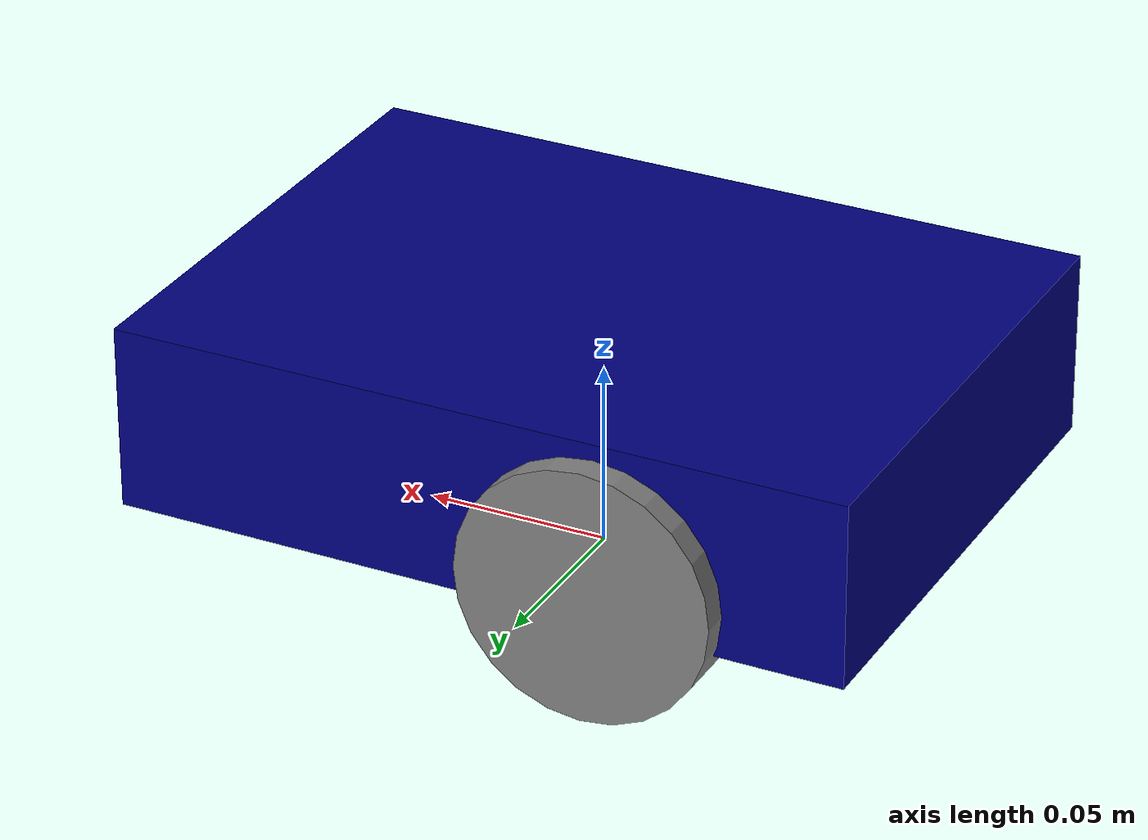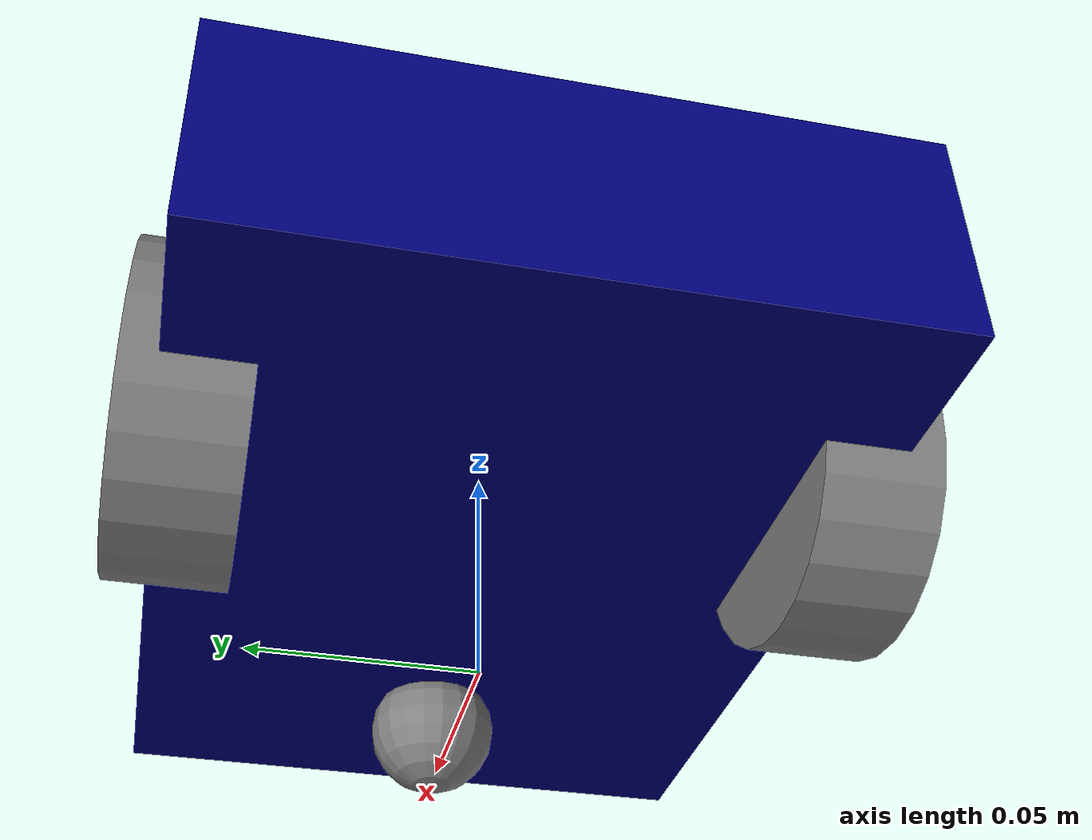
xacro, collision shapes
<?xml version="1.0"?>
<robot name="my_robot" xmlns:xacro="http://www.ros.org/wiki/xacro">

    <xacro:include filename="common_properties.xacro" />
    <!-- Modelo de Francisco el algoritmo del wall_following esta costruido en base a esto -->

    <!-- Modelo de Abigail se esta adaptando para que pueda funcionar con el wall_following -->
    <xacro:include filename="mobile_base_abi.xacro" />
    <xacro:include filename="my_robot_abi_gazebo.xacro" />

</robot>

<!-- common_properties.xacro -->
<robot xmlns:xacro="http://www.ros.org/wiki/xacro">

    <material name="blue">
        <color rgba="0 0 0.5 1" />
    </material>

    <material name="grey">
        <color rgba="0.5 0.5 0.5 1"/>
    </material>

<!-- Macro de inercia para caja (chasis) -->
  <!-- m=masa en kg, x=largo, y=ancho, z=alto, o_xyz=centro de masa, o_rpy=orientacion -->
  <xacro:macro name="box_inertia" params="m x y z o_xyz o_rpy">
    <inertial>
      <mass value="${m}"/>
      <origin xyz="${o_xyz}" rpy="${o_rpy}"/>
      <inertia ixx="${(m/12) * (y*y + z*z)}" ixy="0" ixz="0"
               iyy="${(m/12) * (x*x + z*z)}" iyz="0"
               izz="${(m/12) * (x*x + y*y)}"/>
    </inertial>
  </xacro:macro>

  <!-- Macro de inercia para cilindro (ruedas) -->
  <!-- m=masa en kg, r=radio, h=ancho de la rueda, o_xyz=centro de masa, o_rpy=orientacion -->
  <xacro:macro name="cylinder_inertia" params="m r h o_xyz o_rpy">
    <inertial>
      <mass value="${m}"/>
      <origin xyz="${o_xyz}" rpy="${o_rpy}"/>
      <inertia ixx="${(m/12) * (3*r*r + h*h)}" ixy="0" ixz="0"
               iyy="${(m/12) * (3*r*r + h*h)}" iyz="0"
               izz="${(m/2) * (r*r)}"/>
    </inertial>
  </xacro:macro>
</robot>

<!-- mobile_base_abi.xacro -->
<robot xmlns:xacro="http://www.ros.org/wiki/xacro">

  <!-- Parámetros generales -->
  <xacro:arg name="package_name" default="my_robot_description"/>
  <xacro:arg name="mesh_dir" default="meshes"/>

  <!-- Escala global del modelo CAD exportado desde SolidWorks -->
  <xacro:property name="global_scale" value="1.0"/>

  <!-- Base -->
  <xacro:property name="base_mesh" value="base_link.STL"/>
  <xacro:property name="base_scale" value="${global_scale} ${global_scale} ${global_scale}"/>
  <xacro:property name="base_visual_xyz" value="0 0 0"/>
  <xacro:property name="base_visual_rpy" value="0 0 0"/>

  <!-- Rueda izquierda -->
  <xacro:property name="left_wheel_mesh" value="Rueda_izquierda_link.STL"/>
  <xacro:property name="left_wheel_scale" value="${global_scale} ${global_scale} ${global_scale}"/>
  <xacro:property name="left_wheel_xyz" value="-0.033259 0.08025 -0.01375"/>
  <xacro:property name="left_wheel_rpy" value="0 0 0"/>
  <xacro:property name="left_wheel_axis" value="0 1 0"/>
  <xacro:property name="left_wheel_visual_xyz" value="0 0 0"/>
  <xacro:property name="left_wheel_visual_rpy" value="-1.5708 0.042481 0"/>

  <!-- Rueda derecha -->
  <xacro:property name="right_wheel_mesh" value="Rueda_derecha_link.STL"/>
  <xacro:property name="right_wheel_scale" value="${global_scale} ${global_scale} ${global_scale}"/>
  <xacro:property name="right_wheel_xyz" value="-0.033259 -0.08025 -0.01375"/>
  <xacro:property name="right_wheel_rpy" value="0 0 0"/>
  <xacro:property name="right_wheel_axis" value="0 1 0"/>
  <xacro:property name="right_wheel_visual_xyz" value="0 0 0"/>
  <xacro:property name="right_wheel_visual_rpy" value="-1.5708 0.042481 0"/>

  <!-- Soporte castor-->
  <xacro:property name="castor_base_mesh" value="Base_castor_link.STL"/>
  <xacro:property name="castor_base_scale" value="${global_scale} ${global_scale} ${global_scale}"/>
  <xacro:property name="castor_base_xyz" value="0.072581 0 -0.0025"/>
  <xacro:property name="castor_base_rpy" value="3.14 3.14 3.14"/>
  <xacro:property name="castor_base_axis" value="0 0 1"/>
  <xacro:property name="castor_base_visual_xyz" value="0 0 0"/>
  <xacro:property name="castor_base_visual_rpy" value="0 3.14 0"/>

  <!-- Rueda castor -->
  <xacro:property name="castor_wheel_mesh" value="Rueda_castor_link.STL"/>
  <xacro:property name="castor_wheel_scale" value="${global_scale} ${global_scale} ${global_scale}"/>
  <xacro:property name="castor_wheel_xyz" value="-0.015014 -0.00012272 -0.02296"/>
  <xacro:property name="castor_wheel_rpy" value="3.14 3.14 -3.14"/>
  <xacro:property name="castor_wheel_axis" value="0 1 0"/>
  <xacro:property name="castor_wheel_visual_xyz" value="0 0 0"/>
  <xacro:property name="castor_wheel_visual_rpy" value="1.5708 0.042481 0"/>

  <!-- Parámetros geométricos de referencia para usar en control/TF -->
  <!-- No se usan explicitamente, pero sirven para dejar documentadas las dimensiones principales -->
  <xacro:property name="wheel_separation" value="0.1605"/>
  <xacro:property name="wheel_radius" value="0.0345"/>
  <xacro:property name="robot_length" value="0.2"/>
  <xacro:property name="robot_width" value="0.145"/>
  <xacro:property name="robot_height" value="0.050"/>

  <!-- Macro generica para cualquier link con malla STL.              -->
  <!-- Todos los valores que cambian entre links son parametros:      -->
  <!-- name, mesh, scale, visual_xyz, visual_rpy, material.          -->
  <xacro:macro name="mesh_link" params="name mesh scale visual_xyz visual_rpy material">
    <link name="${name}">
      <visual>
        <origin xyz="${visual_xyz}" rpy="${visual_rpy}"/>
        <geometry>
          <mesh filename="package://$(arg package_name)/$(arg mesh_dir)/${mesh}" scale="${scale}"/>
        </geometry>
        <material name="${material}"/>
      </visual>
    </link>
  </xacro:macro>

  <!-- Instancia de Macros-links -->
  <!-- Sin geometria, punto de contacto del robot con el suelo -->
  <link name="base_footprint"/>

  <link name="base_link">
    <visual>
      <origin xyz="${base_visual_xyz}" rpy="${base_visual_rpy}"/>
      <geometry>
        <mesh filename="package://my_robot_description/meshes/${base_mesh}" scale="${base_scale}"/>
      </geometry>
      <material name="blue"/>
    </visual>

    <collision>
      <origin xyz="0 0 0" rpy="0 0 0"/>
      <geometry>
        <box size="${robot_length} ${robot_width} ${robot_height}"/>
      </geometry>
    </collision>

    <xacro:box_inertia m="0.12" x="${robot_length}" y="${robot_width}" z="${robot_height}"
                        o_xyz="0 0 0" o_rpy="0 0 0"/>
  </link>

  <link name="Rueda_izquierda_link">
    <visual>
      <origin xyz="${left_wheel_visual_xyz}" rpy="${left_wheel_visual_rpy}"/>
      <geometry>
        <mesh filename="package://my_robot_description/meshes/${left_wheel_mesh}" scale="${left_wheel_scale}"/>
      </geometry>
      <material name="grey"/>
    </visual>

    <collision>
      <origin xyz="0 -0.013 0" rpy="1.5708 0 0"/>
      <geometry>
        <cylinder radius="${wheel_radius}" length="0.025"/>
      </geometry>
    </collision>

    <xacro:cylinder_inertia m="0.1403" r="${wheel_radius}" h="0.025"
                            o_xyz="0 -0.013 0" o_rpy="1.5708 0 0"/>
  </link>

  <link name="Rueda_derecha_link">
    <visual>
      <origin xyz="${right_wheel_visual_xyz}" rpy="${right_wheel_visual_rpy}"/>
      <geometry>
        <mesh filename="package://my_robot_description/meshes/${right_wheel_mesh}" scale="${right_wheel_scale}"/>
      </geometry>
      <material name="grey"/>
    </visual>

    <collision>
      <origin xyz="0 0.013 0" rpy="1.5708 0 0"/>
      <geometry>
        <cylinder radius="${wheel_radius}" length="0.025"/>
      </geometry>
    </collision>

    <xacro:cylinder_inertia m="0.1403" r="${wheel_radius}" h="0.025"
                            o_xyz="0 0.013 0" o_rpy="1.5708 0 0"/>
  </link>

  <link name="Base_castor_link">
    <visual>
      <origin xyz="0 0 0" rpy="${castor_base_visual_rpy}"/>
      <geometry>
        <mesh filename="package://my_robot_description/meshes/${castor_base_mesh}" scale="${castor_base_scale}"/>
      </geometry>
      <material name="blue"/>
    </visual>

    <collision>
      <origin xyz="0 0 0" rpy="0 0 0"/>
      <geometry>
        <sphere radius="0.01"/>
      </geometry>
    </collision>

    <inertial>
      <mass value="0.01"/>
      <origin xyz="0 0 0" rpy="0 0 0"/>
      <inertia ixx="1e-6" ixy="0" ixz="0" iyy="1e-6" iyz="0" izz="1e-6"/>
    </inertial>
  </link>

  <link name="Rueda_castor_link">
    <visual>
      <origin xyz="0 0 0" rpy="${castor_wheel_visual_rpy}"/>
      <geometry>
        <mesh filename="package://my_robot_description/meshes/${castor_wheel_mesh}" scale="${castor_wheel_scale}"/>
      </geometry>
      <material name="grey"/>
    </visual>

    <collision>
      <origin xyz="0 0 0" rpy="0 0 0"/>
      <geometry>
        <sphere radius="0.015"/>
      </geometry>
    </collision>

    <xacro:cylinder_inertia m="0.01" r="0.015" h="0.015" o_xyz="0 0 0" o_rpy="0 0 0"/>
  </link>

  <link name="caja_castor_link">
    <visual>
      <origin xyz="0 0 -0.0062" rpy="${castor_base_visual_rpy}" />
      <geometry>
        <cylinder radius="0.01" length="0.015"/>
      </geometry>
      <material name="Cyan">
        <color rgba="0 1.0 1.0 1.0"/>
      </material>
    </visual>

    <collision>
      <origin xyz="0 0 -0.0062" rpy="0 0 0"/>
      <geometry>
        <box size="0.03 0.03 0.015" />
      </geometry>
    </collision>

    <inertial>
      <mass value="0.005"/>
      <origin xyz="0 0 0" rpy="0 0 0"/>
      <inertia ixx="1e-6" ixy="0" ixz="0" iyy="1e-6" iyz="0" izz="1e-6"/>
    </inertial>
  </link>

  <!-- Link del LIDAR, cilindro pequeño sobre el chasis -->
  <link name="Lidar_link">
    <visual>
      <origin xyz="0 0 0.0095" rpy="0 0 0"/>
      <geometry>
        <cylinder radius="0.025" length="0.02"/>
      </geometry>
      <material name="">
        <color rgba="1 0 0 1"/>
      </material>
    </visual>

    <collision>
      <origin xyz="0 0 0.005" rpy="0 0 0"/>
      <geometry>
        <cylinder radius="0.025" length="0.02"/>
      </geometry>
    </collision>

    <inertial>
      <mass value="0.01"/>
      <origin xyz="0 0 0.01" rpy="0 0 0"/>
      <inertia ixx="1e-6" ixy="0" ixz="0" iyy="1e-6" iyz="0" izz="1e-6"/>
    </inertial>
  </link>

  <link name="Imu_link">
    <visual>
      <geometry>
        <box size="0.02 0.02 0.01"/>
      </geometry>
      <material name="blue"/>
    </visual>

    <collision>
      <origin xyz="0 0 0.005" rpy="0 0 0"/>
      <geometry>
        <cylinder radius="0.025" length="0.02"/>
      </geometry>
    </collision>

    <inertial>
      <mass value="0.005"/>
      <origin xyz="0 0 0" rpy="0 0 0"/>
      <inertia ixx="1e-6" ixy="0" ixz="0" iyy="1e-6" iyz="0" izz="1e-6"/>
    </inertial>

  </link>

 <!-- Instancia Link rueda derecha-->
  <joint name="Rueda_derecha_joint" type="continuous">
    <origin xyz="${right_wheel_xyz}" rpy="${right_wheel_rpy}"/>
    <parent link="base_link"/>
    <child link="Rueda_derecha_link"/>
    <axis xyz="${right_wheel_axis}"/>
  </joint>

  <joint name="Rueda_izquierda_joint" type="continuous">
    <origin xyz="${left_wheel_xyz}" rpy="${left_wheel_rpy}"/>
    <parent link="base_link"/>
    <child link="Rueda_izquierda_link"/>
    <axis xyz="${left_wheel_axis}"/>
  </joint>

  <joint name="caja_castor_joint" type="fixed">
    <origin xyz="${castor_base_xyz}" rpy="${castor_base_rpy}"/>
    <parent link="base_link"/>
    <child link="caja_castor_link"/>
    <axis xyz="${castor_base_axis}"/>
  </joint>

 <!-- Instancia Link base castor-->
  <joint name="Base_castor_joint" type="continuous">
    <origin xyz="0 0 -0.007" rpy="${castor_base_rpy}"/>
    <parent link="caja_castor_link"/>
    <child link="Base_castor_link"/>
    <axis xyz="${castor_base_axis}"/>
  </joint>

 <!-- Instancia Link rueda castor-->
  <joint name="Rueda_castor_joint" type="continuous">
    <origin xyz="${castor_wheel_xyz}" rpy="${castor_wheel_rpy}"/>
    <parent link="Base_castor_link"/>
    <child link="Rueda_castor_link"/>
    <axis xyz="${castor_wheel_axis}"/>
  </joint>

    <!-- Joint que fija el LIDAR al chasis -->
  <joint name="Lidar_joint" type="fixed">
    <parent link="base_link"/>
    <child link="Lidar_link"/>
    <origin xyz="0 0 0" rpy="0 -0.00478 0"/>
    <axis xyz="0 1 0"/>
  </joint>

  <joint name="Imu_joint" type="fixed">
    <parent link="base_link"/>
    <child link="Imu_link"/>
    <origin xyz="0 0 -0.005" rpy="0 0 0"/>
  </joint>

    <!-- Joints -->
  <joint name="base_joint" type="fixed">
    <parent link="base_footprint"/>
    <child link="base_link"/>
    <origin xyz="0 0 0.04675" rpy="0 0 0"/>
  </joint>

</robot>
